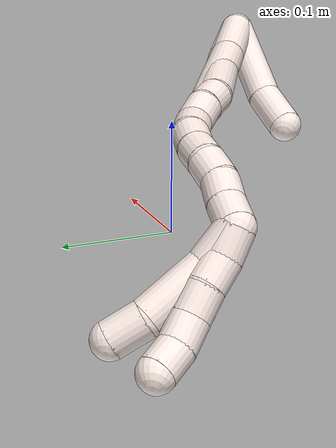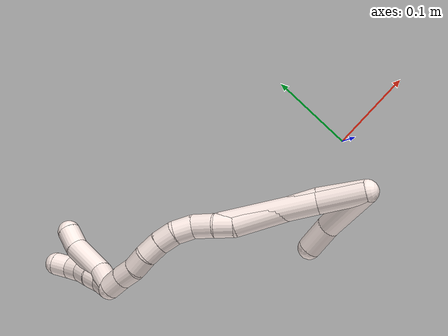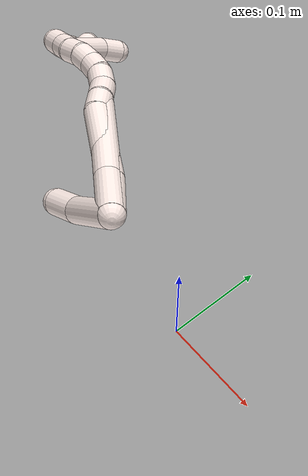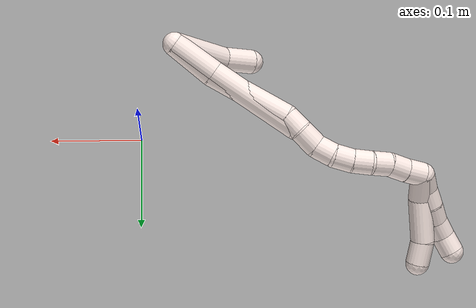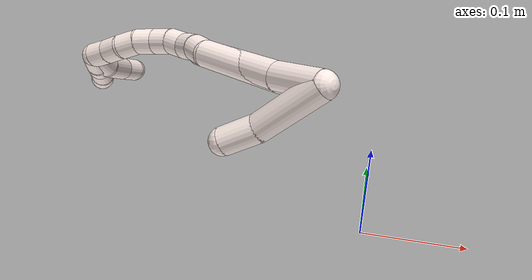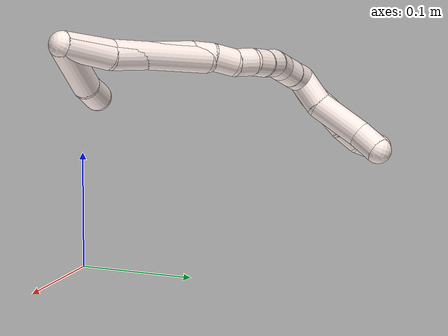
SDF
<sdf version="1.7">
 <world name="default">
  <model name="11">
   <static>0</static>
   <link name="11">
    <collision name="collision-cylinder-e_1_2_8">
     <pose>-0.00473 0.000951 0.024342 -0.039049 -0.191774 0.003756</pose>
     <geometry><cylinder><radius>0.0125</radius><length>0.049631</length></cylinder></geometry>
     <surface>
      <friction><ode><mu>1.16</mu><mu2>1.16</mu2><slip1>0</slip1><slip2>0</slip2></ode></friction>
      <contact><ode><kp>1e+06</kp><kd>1</kd><max_vel>0</max_vel><min_depth>0.001</min_depth></ode></contact>
     </surface>
    </collision>
    <visual name="visual-cylinder-e_1_2_8">
     <pose>-0.00473 0.000951 0.024342 -0.039049 -0.191774 0.003756</pose>
     <geometry><cylinder><radius>0.0125</radius><length>0.049631</length></cylinder></geometry>
     <material><ambient>1 0.933333 0.909804 1</ambient></material>
    </visual>
    <collision name="collision-cylinder-e_2_8_6">
     <pose>-0.023392 0.004732 0.096813 -0.05874 -0.281321 0.00832</pose>
     <geometry><cylinder><radius>0.0125</radius><length>0.100369</length></cylinder></geometry>
     <surface>
      <friction><ode><mu>1.16</mu><mu2>1.16</mu2><slip1>0</slip1><slip2>0</slip2></ode></friction>
      <contact><ode><kp>1e+06</kp><kd>1</kd><max_vel>0</max_vel><min_depth>0.001</min_depth></ode></contact>
     </surface>
    </collision>
    <visual name="visual-cylinder-e_2_8_6">
     <pose>-0.023392 0.004732 0.096813 -0.05874 -0.281321 0.00832</pose>
     <geometry><cylinder><radius>0.0125</radius><length>0.100369</length></cylinder></geometry>
     <material><ambient>1 0.933333 0.909804 1</ambient></material>
    </visual>
    <collision name="collision-cylinder-e_1_2_9">
     <pose>0.013785 0.012404 0.027527 -0.423368 0.428312 -0.093411</pose>
     <geometry><cylinder><radius>0.0125</radius><length>0.066382</length></cylinder></geometry>
     <surface>
      <friction><ode><mu>1.16</mu><mu2>1.16</mu2><slip1>0</slip1><slip2>0</slip2></ode></friction>
      <contact><ode><kp>1e+06</kp><kd>1</kd><max_vel>0</max_vel><min_depth>0.001</min_depth></ode></contact>
     </surface>
    </collision>
    <visual name="visual-cylinder-e_1_2_9">
     <pose>0.013785 0.012404 0.027527 -0.423368 0.428312 -0.093411</pose>
     <geometry><cylinder><radius>0.0125</radius><length>0.066382</length></cylinder></geometry>
     <material><ambient>1 0.933333 0.909804 1</ambient></material>
    </visual>
    <collision name="collision-cylinder-e_2_9_5">
     <pose>0.031275 0.033901 0.068698 -0.587837 0.222187 -0.067505</pose>
     <geometry><cylinder><radius>0.0125</radius><length>0.033618</length></cylinder></geometry>
     <surface>
      <friction><ode><mu>1.16</mu><mu2>1.16</mu2><slip1>0</slip1><slip2>0</slip2></ode></friction>
      <contact><ode><kp>1e+06</kp><kd>1</kd><max_vel>0</max_vel><min_depth>0.001</min_depth></ode></contact>
     </surface>
    </collision>
    <visual name="visual-cylinder-e_2_9_5">
     <pose>0.031275 0.033901 0.068698 -0.587837 0.222187 -0.067505</pose>
     <geometry><cylinder><radius>0.0125</radius><length>0.033618</length></cylinder></geometry>
     <material><ambient>1 0.933333 0.909804 1</ambient></material>
    </visual>
    <collision name="collision-cylinder-e_1_2_10">
     <pose>-0.00355 -0.000373 0.024203 0.015402 -0.145639 -0.001124</pose>
     <geometry><cylinder><radius>0.0125</radius><length>0.04893</length></cylinder></geometry>
     <surface>
      <friction><ode><mu>1.16</mu><mu2>1.16</mu2><slip1>0</slip1><slip2>0</slip2></ode></friction>
      <contact><ode><kp>1e+06</kp><kd>1</kd><max_vel>0</max_vel><min_depth>0.001</min_depth></ode></contact>
     </surface>
    </collision>
    <visual name="visual-cylinder-e_1_2_10">
     <pose>-0.00355 -0.000373 0.024203 0.015402 -0.145639 -0.001124</pose>
     <geometry><cylinder><radius>0.0125</radius><length>0.04893</length></cylinder></geometry>
     <material><ambient>1 0.933333 0.909804 1</ambient></material>
    </visual>
    <collision name="collision-cylinder-e_2_10_11">
     <pose>-0.021291 0.005244 0.089828 -0.143608 -0.326877 0.023722</pose>
     <geometry><cylinder><radius>0.0125</radius><length>0.088385</length></cylinder></geometry>
     <surface>
      <friction><ode><mu>1.16</mu><mu2>1.16</mu2><slip1>0</slip1><slip2>0</slip2></ode></friction>
      <contact><ode><kp>1e+06</kp><kd>1</kd><max_vel>0</max_vel><min_depth>0.001</min_depth></ode></contact>
     </surface>
    </collision>
    <visual name="visual-cylinder-e_2_10_11">
     <pose>-0.021291 0.005244 0.089828 -0.143608 -0.326877 0.023722</pose>
     <geometry><cylinder><radius>0.0125</radius><length>0.088385</length></cylinder></geometry>
     <material><ambient>1 0.933333 0.909804 1</ambient></material>
    </visual>
    <collision name="collision-cylinder-e_3_11_12">
     <pose>-0.038554 0.009726 0.140768 0.157102 -0.308733 -0.024495</pose>
     <geometry><cylinder><radius>0.0125</radius><length>0.020233</length></cylinder></geometry>
     <surface>
      <friction><ode><mu>1.16</mu><mu2>1.16</mu2><slip1>0</slip1><slip2>0</slip2></ode></friction>
      <contact><ode><kp>1e+06</kp><kd>1</kd><max_vel>0</max_vel><min_depth>0.001</min_depth></ode></contact>
     </surface>
    </collision>
    <visual name="visual-cylinder-e_3_11_12">
     <pose>-0.038554 0.009726 0.140768 0.157102 -0.308733 -0.024495</pose>
     <geometry><cylinder><radius>0.0125</radius><length>0.020233</length></cylinder></geometry>
     <material><ambient>1 0.933333 0.909804 1</ambient></material>
    </visual>
    <collision name="collision-cylinder-e_4_12_13">
     <pose>-0.043178 0.00684 0.16126 0.124949 -0.139244 -0.008725</pose>
     <geometry><cylinder><radius>0.0125</radius><length>0.022332</length></cylinder></geometry>
     <surface>
      <friction><ode><mu>1.16</mu><mu2>1.16</mu2><slip1>0</slip1><slip2>0</slip2></ode></friction>
      <contact><ode><kp>1e+06</kp><kd>1</kd><max_vel>0</max_vel><min_depth>0.001</min_depth></ode></contact>
     </surface>
    </collision>
    <visual name="visual-cylinder-e_4_12_13">
     <pose>-0.043178 0.00684 0.16126 0.124949 -0.139244 -0.008725</pose>
     <geometry><cylinder><radius>0.0125</radius><length>0.022332</length></cylinder></geometry>
     <material><ambient>1 0.933333 0.909804 1</ambient></material>
    </visual>
    <collision name="collision-cylinder-e_5_13_14">
     <pose>-0.048107 0.006986 0.181566 -0.161825 -0.343157 0.028101</pose>
     <geometry><cylinder><radius>0.0125</radius><length>0.020087</length></cylinder></geometry>
     <surface>
      <friction><ode><mu>1.16</mu><mu2>1.16</mu2><slip1>0</slip1><slip2>0</slip2></ode></friction>
      <contact><ode><kp>1e+06</kp><kd>1</kd><max_vel>0</max_vel><min_depth>0.001</min_depth></ode></contact>
     </surface>
    </collision>
    <visual name="visual-cylinder-e_5_13_14">
     <pose>-0.048107 0.006986 0.181566 -0.161825 -0.343157 0.028101</pose>
     <geometry><cylinder><radius>0.0125</radius><length>0.020087</length></cylinder></geometry>
     <material><ambient>1 0.933333 0.909804 1</ambient></material>
    </visual>
    <collision name="collision-cylinder-e_6_14_15">
     <pose>-0.052904 0.012309 0.200053 -0.393512 -0.14214 0.028379</pose>
     <geometry><cylinder><radius>0.0125</radius><length>0.020021</length></cylinder></geometry>
     <surface>
      <friction><ode><mu>1.16</mu><mu2>1.16</mu2><slip1>0</slip1><slip2>0</slip2></ode></friction>
      <contact><ode><kp>1e+06</kp><kd>1</kd><max_vel>0</max_vel><min_depth>0.001</min_depth></ode></contact>
     </surface>
    </collision>
    <visual name="visual-cylinder-e_6_14_15">
     <pose>-0.052904 0.012309 0.200053 -0.393512 -0.14214 0.028379</pose>
     <geometry><cylinder><radius>0.0125</radius><length>0.020021</length></cylinder></geometry>
     <material><ambient>1 0.933333 0.909804 1</ambient></material>
    </visual>
    <collision name="collision-cylinder-e_7_15_16">
     <pose>-0.05579 0.021384 0.217576 -0.562312 -0.147283 0.042607</pose>
     <geometry><cylinder><radius>0.0125</radius><length>0.020006</length></cylinder></geometry>
     <surface>
      <friction><ode><mu>1.16</mu><mu2>1.16</mu2><slip1>0</slip1><slip2>0</slip2></ode></friction>
      <contact><ode><kp>1e+06</kp><kd>1</kd><max_vel>0</max_vel><min_depth>0.001</min_depth></ode></contact>
     </surface>
    </collision>
    <visual name="visual-cylinder-e_7_15_16">
     <pose>-0.05579 0.021384 0.217576 -0.562312 -0.147283 0.042607</pose>
     <geometry><cylinder><radius>0.0125</radius><length>0.020006</length></cylinder></geometry>
     <material><ambient>1 0.933333 0.909804 1</ambient></material>
    </visual>
    <collision name="collision-cylinder-e_8_16_17">
     <pose>-0.056347 0.032164 0.234247 -0.585605 0.091211 -0.027515</pose>
     <geometry><cylinder><radius>0.0125</radius><length>0.020002</length></cylinder></geometry>
     <surface>
      <friction><ode><mu>1.16</mu><mu2>1.16</mu2><slip1>0</slip1><slip2>0</slip2></ode></friction>
      <contact><ode><kp>1e+06</kp><kd>1</kd><max_vel>0</max_vel><min_depth>0.001</min_depth></ode></contact>
     </surface>
    </collision>
    <visual name="visual-cylinder-e_8_16_17">
     <pose>-0.056347 0.032164 0.234247 -0.585605 0.091211 -0.027515</pose>
     <geometry><cylinder><radius>0.0125</radius><length>0.020002</length></cylinder></geometry>
     <material><ambient>1 0.933333 0.909804 1</ambient></material>
    </visual>
    <collision name="collision-cylinder-e_9_17_18">
     <pose>-0.054409 0.041043 0.251904 -0.346136 0.102922 -0.018008</pose>
     <geometry><cylinder><radius>0.0125</radius><length>0.020001</length></cylinder></geometry>
     <surface>
      <friction><ode><mu>1.16</mu><mu2>1.16</mu2><slip1>0</slip1><slip2>0</slip2></ode></friction>
      <contact><ode><kp>1e+06</kp><kd>1</kd><max_vel>0</max_vel><min_depth>0.001</min_depth></ode></contact>
     </surface>
    </collision>
    <visual name="visual-cylinder-e_9_17_18">
     <pose>-0.054409 0.041043 0.251904 -0.346136 0.102922 -0.018008</pose>
     <geometry><cylinder><radius>0.0125</radius><length>0.020001</length></cylinder></geometry>
     <material><ambient>1 0.933333 0.909804 1</ambient></material>
    </visual>
    <collision name="collision-cylinder-e_10_18_1">
     <pose>-0.052645 0.048597 0.270319 -0.432263 0.073702 -0.016189</pose>
     <geometry><cylinder><radius>0.0125</radius><length>0.020003</length></cylinder></geometry>
     <surface>
      <friction><ode><mu>1.16</mu><mu2>1.16</mu2><slip1>0</slip1><slip2>0</slip2></ode></friction>
      <contact><ode><kp>1e+06</kp><kd>1</kd><max_vel>0</max_vel><min_depth>0.001</min_depth></ode></contact>
     </surface>
    </collision>
    <visual name="visual-cylinder-e_10_18_1">
     <pose>-0.052645 0.048597 0.270319 -0.432263 0.073702 -0.016189</pose>
     <geometry><cylinder><radius>0.0125</radius><length>0.020003</length></cylinder></geometry>
     <material><ambient>1 0.933333 0.909804 1</ambient></material>
    </visual>
    <collision name="collision-cylinder-e_1_1_19">
     <pose>-0.046797 0.048888 0.287042 0.469383 0.536513 0.131258</pose>
     <geometry><cylinder><radius>0.0125</radius><length>0.02</length></cylinder></geometry>
     <surface>
      <friction><ode><mu>1.16</mu><mu2>1.16</mu2><slip1>0</slip1><slip2>0</slip2></ode></friction>
      <contact><ode><kp>1e+06</kp><kd>1</kd><max_vel>0</max_vel><min_depth>0.001</min_depth></ode></contact>
     </surface>
    </collision>
    <visual name="visual-cylinder-e_1_1_19">
     <pose>-0.046797 0.048888 0.287042 0.469383 0.536513 0.131258</pose>
     <geometry><cylinder><radius>0.0125</radius><length>0.02</length></cylinder></geometry>
     <material><ambient>1 0.933333 0.909804 1</ambient></material>
    </visual>
    <collision name="collision-cylinder-e_2_19_20">
     <pose>-0.039007 0.040758 0.303358 0.455926 0.271154 0.063274</pose>
     <geometry><cylinder><radius>0.0125</radius><length>0.02</length></cylinder></geometry>
     <surface>
      <friction><ode><mu>1.16</mu><mu2>1.16</mu2><slip1>0</slip1><slip2>0</slip2></ode></friction>
      <contact><ode><kp>1e+06</kp><kd>1</kd><max_vel>0</max_vel><min_depth>0.001</min_depth></ode></contact>
     </surface>
    </collision>
    <visual name="visual-cylinder-e_2_19_20">
     <pose>-0.039007 0.040758 0.303358 0.455926 0.271154 0.063274</pose>
     <geometry><cylinder><radius>0.0125</radius><length>0.02</length></cylinder></geometry>
     <material><ambient>1 0.933333 0.909804 1</ambient></material>
    </visual>
    <collision name="collision-cylinder-e_3_20_21">
     <pose>-0.032387 0.032556 0.320302 0.445469 0.405146 0.092972</pose>
     <geometry><cylinder><radius>0.0125</radius><length>0.02</length></cylinder></geometry>
     <surface>
      <friction><ode><mu>1.16</mu><mu2>1.16</mu2><slip1>0</slip1><slip2>0</slip2></ode></friction>
      <contact><ode><kp>1e+06</kp><kd>1</kd><max_vel>0</max_vel><min_depth>0.001</min_depth></ode></contact>
     </surface>
    </collision>
    <visual name="visual-cylinder-e_3_20_21">
     <pose>-0.032387 0.032556 0.320302 0.445469 0.405146 0.092972</pose>
     <geometry><cylinder><radius>0.0125</radius><length>0.02</length></cylinder></geometry>
     <material><ambient>1 0.933333 0.909804 1</ambient></material>
    </visual>
    <collision name="collision-cylinder-e_4_21_22">
     <pose>-0.026046 0.025464 0.337784 0.328473 0.242277 0.040345</pose>
     <geometry><cylinder><radius>0.0125</radius><length>0.02</length></cylinder></geometry>
     <surface>
      <friction><ode><mu>1.16</mu><mu2>1.16</mu2><slip1>0</slip1><slip2>0</slip2></ode></friction>
      <contact><ode><kp>1e+06</kp><kd>1</kd><max_vel>0</max_vel><min_depth>0.001</min_depth></ode></contact>
     </surface>
    </collision>
    <visual name="visual-cylinder-e_4_21_22">
     <pose>-0.026046 0.025464 0.337784 0.328473 0.242277 0.040345</pose>
     <geometry><cylinder><radius>0.0125</radius><length>0.02</length></cylinder></geometry>
     <material><ambient>1 0.933333 0.909804 1</ambient></material>
    </visual>
    <collision name="collision-cylinder-e_5_22_4">
     <pose>-0.024284 0.018628 0.35624 0.380287 -0.063709 -0.012266</pose>
     <geometry><cylinder><radius>0.0125</radius><length>0.02</length></cylinder></geometry>
     <surface>
      <friction><ode><mu>1.16</mu><mu2>1.16</mu2><slip1>0</slip1><slip2>0</slip2></ode></friction>
      <contact><ode><kp>1e+06</kp><kd>1</kd><max_vel>0</max_vel><min_depth>0.001</min_depth></ode></contact>
     </surface>
    </collision>
    <visual name="visual-cylinder-e_5_22_4">
     <pose>-0.024284 0.018628 0.35624 0.380287 -0.063709 -0.012266</pose>
     <geometry><cylinder><radius>0.0125</radius><length>0.02</length></cylinder></geometry>
     <material><ambient>1 0.933333 0.909804 1</ambient></material>
    </visual>
    <collision name="collision-cylinder-e_1_1_23">
     <pose>-0.045058 0.043501 0.288344 0.802189 0.488141 0.210444</pose>
     <geometry><cylinder><radius>0.0125</radius><length>0.029213</length></cylinder></geometry>
     <surface>
      <friction><ode><mu>1.16</mu><mu2>1.16</mu2><slip1>0</slip1><slip2>0</slip2></ode></friction>
      <contact><ode><kp>1e+06</kp><kd>1</kd><max_vel>0</max_vel><min_depth>0.001</min_depth></ode></contact>
     </surface>
    </collision>
    <visual name="visual-cylinder-e_1_1_23">
     <pose>-0.045058 0.043501 0.288344 0.802189 0.488141 0.210444</pose>
     <geometry><cylinder><radius>0.0125</radius><length>0.029213</length></cylinder></geometry>
     <material><ambient>1 0.933333 0.909804 1</ambient></material>
    </visual>
    <collision name="collision-cylinder-e_2_23_24">
     <pose>-0.0345 0.018433 0.313853 0.762312 0.160703 0.064519</pose>
     <geometry><cylinder><radius>0.0125</radius><length>0.046339</length></cylinder></geometry>
     <surface>
      <friction><ode><mu>1.16</mu><mu2>1.16</mu2><slip1>0</slip1><slip2>0</slip2></ode></friction>
      <contact><ode><kp>1e+06</kp><kd>1</kd><max_vel>0</max_vel><min_depth>0.001</min_depth></ode></contact>
     </surface>
    </collision>
    <visual name="visual-cylinder-e_2_23_24">
     <pose>-0.0345 0.018433 0.313853 0.762312 0.160703 0.064519</pose>
     <geometry><cylinder><radius>0.0125</radius><length>0.046339</length></cylinder></geometry>
     <material><ambient>1 0.933333 0.909804 1</ambient></material>
    </visual>
    <collision name="collision-cylinder-e_3_24_3">
     <pose>-0.028266 -0.007732 0.336352 1.04933 0.208209 0.120795</pose>
     <geometry><cylinder><radius>0.0125</radius><length>0.024448</length></cylinder></geometry>
     <surface>
      <friction><ode><mu>1.16</mu><mu2>1.16</mu2><slip1>0</slip1><slip2>0</slip2></ode></friction>
      <contact><ode><kp>1e+06</kp><kd>1</kd><max_vel>0</max_vel><min_depth>0.001</min_depth></ode></contact>
     </surface>
    </collision>
    <visual name="visual-cylinder-e_3_24_3">
     <pose>-0.028266 -0.007732 0.336352 1.04933 0.208209 0.120795</pose>
     <geometry><cylinder><radius>0.0125</radius><length>0.024448</length></cylinder></geometry>
     <material><ambient>1 0.933333 0.909804 1</ambient></material>
    </visual>
    <collision name="collision-sphere-3">
     <pose>-0.025739 -0.018102 0.34231 0 -0 0</pose>
     <geometry><sphere><radius>0.0125</radius></sphere></geometry>
     <surface>
      <friction><ode><mu>1.16</mu><mu2>1.16</mu2><slip1>0</slip1><slip2>0</slip2></ode></friction>
      <contact><ode><kp>1e+06</kp><kd>1</kd><max_vel>0</max_vel><min_depth>0.001</min_depth></ode></contact>
     </surface>
    </collision>
    <visual name="visual-sphere-3">
     <pose>-0.025739 -0.018102 0.34231 0 -0 0</pose>
     <geometry><sphere><radius>0.0125</radius></sphere></geometry>
     <material><ambient>1 0.933333 0.909804 1</ambient></material>
    </visual>
    <collision name="collision-sphere-24">
     <pose>-0.030793 0.002638 0.330394 0 -0 0</pose>
     <geometry><sphere><radius>0.0125</radius></sphere></geometry>
     <surface>
      <friction><ode><mu>1.16</mu><mu2>1.16</mu2><slip1>0</slip1><slip2>0</slip2></ode></friction>
      <contact><ode><kp>1e+06</kp><kd>1</kd><max_vel>0</max_vel><min_depth>0.001</min_depth></ode></contact>
     </surface>
    </collision>
    <visual name="visual-sphere-24">
     <pose>-0.030793 0.002638 0.330394 0 -0 0</pose>
     <geometry><sphere><radius>0.0125</radius></sphere></geometry>
     <material><ambient>1 0.933333 0.909804 1</ambient></material>
    </visual>
    <collision name="collision-sphere-23">
     <pose>-0.038208 0.034227 0.297312 0 -0 0</pose>
     <geometry><sphere><radius>0.0125</radius></sphere></geometry>
     <surface>
      <friction><ode><mu>1.16</mu><mu2>1.16</mu2><slip1>0</slip1><slip2>0</slip2></ode></friction>
      <contact><ode><kp>1e+06</kp><kd>1</kd><max_vel>0</max_vel><min_depth>0.001</min_depth></ode></contact>
     </surface>
    </collision>
    <visual name="visual-sphere-23">
     <pose>-0.038208 0.034227 0.297312 0 -0 0</pose>
     <geometry><sphere><radius>0.0125</radius></sphere></geometry>
     <material><ambient>1 0.933333 0.909804 1</ambient></material>
    </visual>
    <collision name="collision-sphere-4">
     <pose>-0.024921 0.014923 0.365507 0 -0 0</pose>
     <geometry><sphere><radius>0.0125</radius></sphere></geometry>
     <surface>
      <friction><ode><mu>1.16</mu><mu2>1.16</mu2><slip1>0</slip1><slip2>0</slip2></ode></friction>
      <contact><ode><kp>1e+06</kp><kd>1</kd><max_vel>0</max_vel><min_depth>0.001</min_depth></ode></contact>
     </surface>
    </collision>
    <visual name="visual-sphere-4">
     <pose>-0.024921 0.014923 0.365507 0 -0 0</pose>
     <geometry><sphere><radius>0.0125</radius></sphere></geometry>
     <material><ambient>1 0.933333 0.909804 1</ambient></material>
    </visual>
    <collision name="collision-sphere-22">
     <pose>-0.023647 0.022332 0.346973 0 -0 0</pose>
     <geometry><sphere><radius>0.0125</radius></sphere></geometry>
     <surface>
      <friction><ode><mu>1.16</mu><mu2>1.16</mu2><slip1>0</slip1><slip2>0</slip2></ode></friction>
      <contact><ode><kp>1e+06</kp><kd>1</kd><max_vel>0</max_vel><min_depth>0.001</min_depth></ode></contact>
     </surface>
    </collision>
    <visual name="visual-sphere-22">
     <pose>-0.023647 0.022332 0.346973 0 -0 0</pose>
     <geometry><sphere><radius>0.0125</radius></sphere></geometry>
     <material><ambient>1 0.933333 0.909804 1</ambient></material>
    </visual>
    <collision name="collision-sphere-21">
     <pose>-0.028446 0.028596 0.328595 0 -0 0</pose>
     <geometry><sphere><radius>0.0125</radius></sphere></geometry>
     <surface>
      <friction><ode><mu>1.16</mu><mu2>1.16</mu2><slip1>0</slip1><slip2>0</slip2></ode></friction>
      <contact><ode><kp>1e+06</kp><kd>1</kd><max_vel>0</max_vel><min_depth>0.001</min_depth></ode></contact>
     </surface>
    </collision>
    <visual name="visual-sphere-21">
     <pose>-0.028446 0.028596 0.328595 0 -0 0</pose>
     <geometry><sphere><radius>0.0125</radius></sphere></geometry>
     <material><ambient>1 0.933333 0.909804 1</ambient></material>
    </visual>
    <collision name="collision-sphere-20">
     <pose>-0.036329 0.036516 0.312008 0 -0 0</pose>
     <geometry><sphere><radius>0.0125</radius></sphere></geometry>
     <surface>
      <friction><ode><mu>1.16</mu><mu2>1.16</mu2><slip1>0</slip1><slip2>0</slip2></ode></friction>
      <contact><ode><kp>1e+06</kp><kd>1</kd><max_vel>0</max_vel><min_depth>0.001</min_depth></ode></contact>
     </surface>
    </collision>
    <visual name="visual-sphere-20">
     <pose>-0.036329 0.036516 0.312008 0 -0 0</pose>
     <geometry><sphere><radius>0.0125</radius></sphere></geometry>
     <material><ambient>1 0.933333 0.909804 1</ambient></material>
    </visual>
    <collision name="collision-sphere-10">
     <pose>-0.007101 -0.000746 0.048406 0 -0 0</pose>
     <geometry><sphere><radius>0.0125</radius></sphere></geometry>
     <surface>
      <friction><ode><mu>1.16</mu><mu2>1.16</mu2><slip1>0</slip1><slip2>0</slip2></ode></friction>
      <contact><ode><kp>1e+06</kp><kd>1</kd><max_vel>0</max_vel><min_depth>0.001</min_depth></ode></contact>
     </surface>
    </collision>
    <visual name="visual-sphere-10">
     <pose>-0.007101 -0.000746 0.048406 0 -0 0</pose>
     <geometry><sphere><radius>0.0125</radius></sphere></geometry>
     <material><ambient>1 0.933333 0.909804 1</ambient></material>
    </visual>
    <collision name="collision-sphere-5">
     <pose>0.034979 0.042993 0.082341 0 -0 0</pose>
     <geometry><sphere><radius>0.0125</radius></sphere></geometry>
     <surface>
      <friction><ode><mu>1.16</mu><mu2>1.16</mu2><slip1>0</slip1><slip2>0</slip2></ode></friction>
      <contact><ode><kp>1e+06</kp><kd>1</kd><max_vel>0</max_vel><min_depth>0.001</min_depth></ode></contact>
     </surface>
    </collision>
    <visual name="visual-sphere-5">
     <pose>0.034979 0.042993 0.082341 0 -0 0</pose>
     <geometry><sphere><radius>0.0125</radius></sphere></geometry>
     <material><ambient>1 0.933333 0.909804 1</ambient></material>
    </visual>
    <collision name="collision-sphere-6">
     <pose>-0.037325 0.007563 0.144941 0 -0 0</pose>
     <geometry><sphere><radius>0.0125</radius></sphere></geometry>
     <surface>
      <friction><ode><mu>1.16</mu><mu2>1.16</mu2><slip1>0</slip1><slip2>0</slip2></ode></friction>
      <contact><ode><kp>1e+06</kp><kd>1</kd><max_vel>0</max_vel><min_depth>0.001</min_depth></ode></contact>
     </surface>
    </collision>
    <visual name="visual-sphere-6">
     <pose>-0.037325 0.007563 0.144941 0 -0 0</pose>
     <geometry><sphere><radius>0.0125</radius></sphere></geometry>
     <material><ambient>1 0.933333 0.909804 1</ambient></material>
    </visual>
    <collision name="collision-sphere-9">
     <pose>0.027571 0.024808 0.055054 0 -0 0</pose>
     <geometry><sphere><radius>0.0125</radius></sphere></geometry>
     <surface>
      <friction><ode><mu>1.16</mu><mu2>1.16</mu2><slip1>0</slip1><slip2>0</slip2></ode></friction>
      <contact><ode><kp>1e+06</kp><kd>1</kd><max_vel>0</max_vel><min_depth>0.001</min_depth></ode></contact>
     </surface>
    </collision>
    <visual name="visual-sphere-9">
     <pose>0.027571 0.024808 0.055054 0 -0 0</pose>
     <geometry><sphere><radius>0.0125</radius></sphere></geometry>
     <material><ambient>1 0.933333 0.909804 1</ambient></material>
    </visual>
    <collision name="collision-sphere-2">
     <geometry><sphere><radius>0.0125</radius></sphere></geometry>
     <surface>
      <friction><ode><mu>1.16</mu><mu2>1.16</mu2><slip1>0</slip1><slip2>0</slip2></ode></friction>
      <contact><ode><kp>1e+06</kp><kd>1</kd><max_vel>0</max_vel><min_depth>0.001</min_depth></ode></contact>
     </surface>
    </collision>
    <visual name="visual-sphere-2">
     <geometry><sphere><radius>0.0125</radius></sphere></geometry>
     <material><ambient>1 0.933333 0.909804 1</ambient></material>
    </visual>
    <collision name="collision-sphere-19">
     <pose>-0.041685 0.045 0.294707 0 -0 0</pose>
     <geometry><sphere><radius>0.0125</radius></sphere></geometry>
     <surface>
      <friction><ode><mu>1.16</mu><mu2>1.16</mu2><slip1>0</slip1><slip2>0</slip2></ode></friction>
      <contact><ode><kp>1e+06</kp><kd>1</kd><max_vel>0</max_vel><min_depth>0.001</min_depth></ode></contact>
     </surface>
    </collision>
    <visual name="visual-sphere-19">
     <pose>-0.041685 0.045 0.294707 0 -0 0</pose>
     <geometry><sphere><radius>0.0125</radius></sphere></geometry>
     <material><ambient>1 0.933333 0.909804 1</ambient></material>
    </visual>
    <collision name="collision-sphere-8">
     <pose>-0.00946 0.001902 0.048684 0 -0 0</pose>
     <geometry><sphere><radius>0.0125</radius></sphere></geometry>
     <surface>
      <friction><ode><mu>1.16</mu><mu2>1.16</mu2><slip1>0</slip1><slip2>0</slip2></ode></friction>
      <contact><ode><kp>1e+06</kp><kd>1</kd><max_vel>0</max_vel><min_depth>0.001</min_depth></ode></contact>
     </surface>
    </collision>
    <visual name="visual-sphere-8">
     <pose>-0.00946 0.001902 0.048684 0 -0 0</pose>
     <geometry><sphere><radius>0.0125</radius></sphere></geometry>
     <material><ambient>1 0.933333 0.909804 1</ambient></material>
    </visual>
    <collision name="collision-sphere-11">
     <pose>-0.03548 0.011234 0.131249 0 -0 0</pose>
     <geometry><sphere><radius>0.0125</radius></sphere></geometry>
     <surface>
      <friction><ode><mu>1.16</mu><mu2>1.16</mu2><slip1>0</slip1><slip2>0</slip2></ode></friction>
      <contact><ode><kp>1e+06</kp><kd>1</kd><max_vel>0</max_vel><min_depth>0.001</min_depth></ode></contact>
     </surface>
    </collision>
    <visual name="visual-sphere-11">
     <pose>-0.03548 0.011234 0.131249 0 -0 0</pose>
     <geometry><sphere><radius>0.0125</radius></sphere></geometry>
     <material><ambient>1 0.933333 0.909804 1</ambient></material>
    </visual>
    <collision name="collision-sphere-12">
     <pose>-0.041628 0.008218 0.150288 0 -0 0</pose>
     <geometry><sphere><radius>0.0125</radius></sphere></geometry>
     <surface>
      <friction><ode><mu>1.16</mu><mu2>1.16</mu2><slip1>0</slip1><slip2>0</slip2></ode></friction>
      <contact><ode><kp>1e+06</kp><kd>1</kd><max_vel>0</max_vel><min_depth>0.001</min_depth></ode></contact>
     </surface>
    </collision>
    <visual name="visual-sphere-12">
     <pose>-0.041628 0.008218 0.150288 0 -0 0</pose>
     <geometry><sphere><radius>0.0125</radius></sphere></geometry>
     <material><ambient>1 0.933333 0.909804 1</ambient></material>
    </visual>
    <collision name="collision-sphere-13">
     <pose>-0.044727 0.005462 0.172232 0 -0 0</pose>
     <geometry><sphere><radius>0.0125</radius></sphere></geometry>
     <surface>
      <friction><ode><mu>1.16</mu><mu2>1.16</mu2><slip1>0</slip1><slip2>0</slip2></ode></friction>
      <contact><ode><kp>1e+06</kp><kd>1</kd><max_vel>0</max_vel><min_depth>0.001</min_depth></ode></contact>
     </surface>
    </collision>
    <visual name="visual-sphere-13">
     <pose>-0.044727 0.005462 0.172232 0 -0 0</pose>
     <geometry><sphere><radius>0.0125</radius></sphere></geometry>
     <material><ambient>1 0.933333 0.909804 1</ambient></material>
    </visual>
    <collision name="collision-sphere-14">
     <pose>-0.051486 0.00851 0.190901 0 -0 0</pose>
     <geometry><sphere><radius>0.0125</radius></sphere></geometry>
     <surface>
      <friction><ode><mu>1.16</mu><mu2>1.16</mu2><slip1>0</slip1><slip2>0</slip2></ode></friction>
      <contact><ode><kp>1e+06</kp><kd>1</kd><max_vel>0</max_vel><min_depth>0.001</min_depth></ode></contact>
     </surface>
    </collision>
    <visual name="visual-sphere-14">
     <pose>-0.051486 0.00851 0.190901 0 -0 0</pose>
     <geometry><sphere><radius>0.0125</radius></sphere></geometry>
     <material><ambient>1 0.933333 0.909804 1</ambient></material>
    </visual>
    <collision name="collision-sphere-15">
     <pose>-0.054322 0.016109 0.209205 0 -0 0</pose>
     <geometry><sphere><radius>0.0125</radius></sphere></geometry>
     <surface>
      <friction><ode><mu>1.16</mu><mu2>1.16</mu2><slip1>0</slip1><slip2>0</slip2></ode></friction>
      <contact><ode><kp>1e+06</kp><kd>1</kd><max_vel>0</max_vel><min_depth>0.001</min_depth></ode></contact>
     </surface>
    </collision>
    <visual name="visual-sphere-15">
     <pose>-0.054322 0.016109 0.209205 0 -0 0</pose>
     <geometry><sphere><radius>0.0125</radius></sphere></geometry>
     <material><ambient>1 0.933333 0.909804 1</ambient></material>
    </visual>
    <collision name="collision-sphere-16">
     <pose>-0.057258 0.026659 0.225947 0 -0 0</pose>
     <geometry><sphere><radius>0.0125</radius></sphere></geometry>
     <surface>
      <friction><ode><mu>1.16</mu><mu2>1.16</mu2><slip1>0</slip1><slip2>0</slip2></ode></friction>
      <contact><ode><kp>1e+06</kp><kd>1</kd><max_vel>0</max_vel><min_depth>0.001</min_depth></ode></contact>
     </surface>
    </collision>
    <visual name="visual-sphere-16">
     <pose>-0.057258 0.026659 0.225947 0 -0 0</pose>
     <geometry><sphere><radius>0.0125</radius></sphere></geometry>
     <material><ambient>1 0.933333 0.909804 1</ambient></material>
    </visual>
    <collision name="collision-sphere-17">
     <pose>-0.055436 0.037668 0.242547 0 -0 0</pose>
     <geometry><sphere><radius>0.0125</radius></sphere></geometry>
     <surface>
      <friction><ode><mu>1.16</mu><mu2>1.16</mu2><slip1>0</slip1><slip2>0</slip2></ode></friction>
      <contact><ode><kp>1e+06</kp><kd>1</kd><max_vel>0</max_vel><min_depth>0.001</min_depth></ode></contact>
     </surface>
    </collision>
    <visual name="visual-sphere-17">
     <pose>-0.055436 0.037668 0.242547 0 -0 0</pose>
     <geometry><sphere><radius>0.0125</radius></sphere></geometry>
     <material><ambient>1 0.933333 0.909804 1</ambient></material>
    </visual>
    <collision name="collision-sphere-18">
     <pose>-0.053381 0.044418 0.261262 0 -0 0</pose>
     <geometry><sphere><radius>0.0125</radius></sphere></geometry>
     <surface>
      <friction><ode><mu>1.16</mu><mu2>1.16</mu2><slip1>0</slip1><slip2>0</slip2></ode></friction>
      <contact><ode><kp>1e+06</kp><kd>1</kd><max_vel>0</max_vel><min_depth>0.001</min_depth></ode></contact>
     </surface>
    </collision>
    <visual name="visual-sphere-18">
     <pose>-0.053381 0.044418 0.261262 0 -0 0</pose>
     <geometry><sphere><radius>0.0125</radius></sphere></geometry>
     <material><ambient>1 0.933333 0.909804 1</ambient></material>
    </visual>
    <collision name="collision-sphere-1">
     <pose>-0.051908 0.052775 0.279376 0 -0 0</pose>
     <geometry><sphere><radius>0.0125</radius></sphere></geometry>
     <surface>
      <friction><ode><mu>1.16</mu><mu2>1.16</mu2><slip1>0</slip1><slip2>0</slip2></ode></friction>
      <contact><ode><kp>1e+06</kp><kd>1</kd><max_vel>0</max_vel><min_depth>0.001</min_depth></ode></contact>
     </surface>
    </collision>
    <visual name="visual-sphere-1">
     <pose>-0.051908 0.052775 0.279376 0 -0 0</pose>
     <geometry><sphere><radius>0.0125</radius></sphere></geometry>
     <material><ambient>1 0.933333 0.909804 1</ambient></material>
    </visual>
    <inertial>
     <pose>-0.023736 0.015724 0.161408 0 -0 0</pose>
     <mass>0.75</mass>
     <inertia>
      <ixx>0.000229</ixx>
      <ixy>0</ixy>
      <ixz>0</ixz>
      <iyy>0.000231</iyy>
      <iyz>0</iyz>
      <izz>6.7e-05</izz>
     </inertia>
    </inertial>
   </link>
   <pose>-0.042251 -0.038999 0.183453 2.83966 1.10309 -0.940028</pose>
  </model>
 </world>
</sdf>
